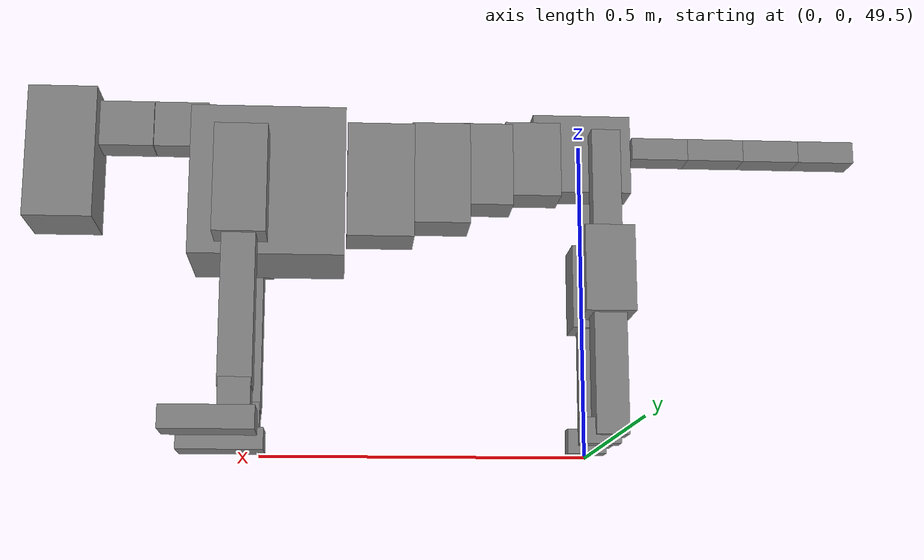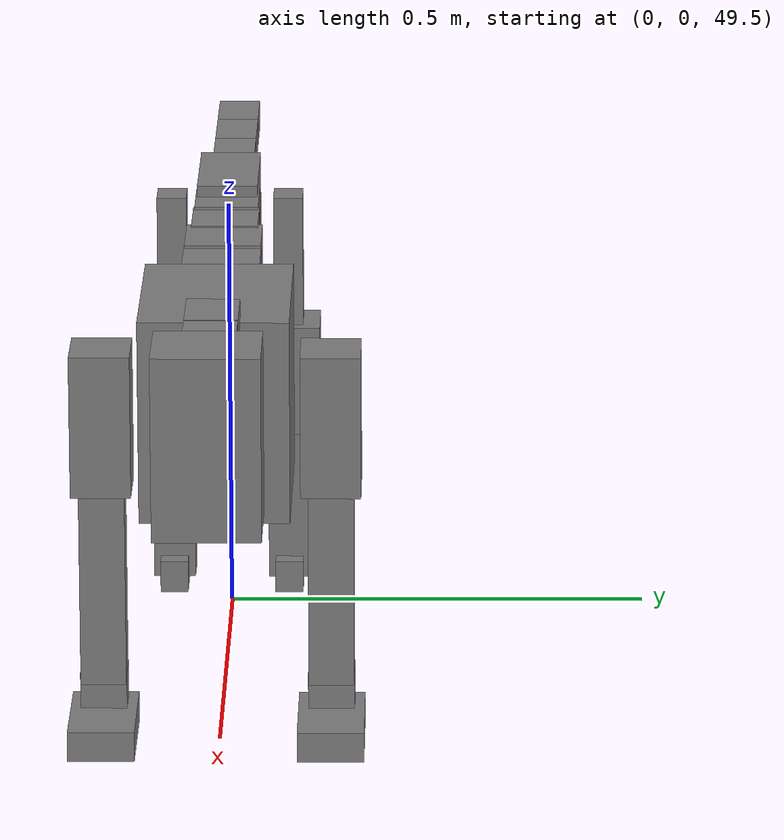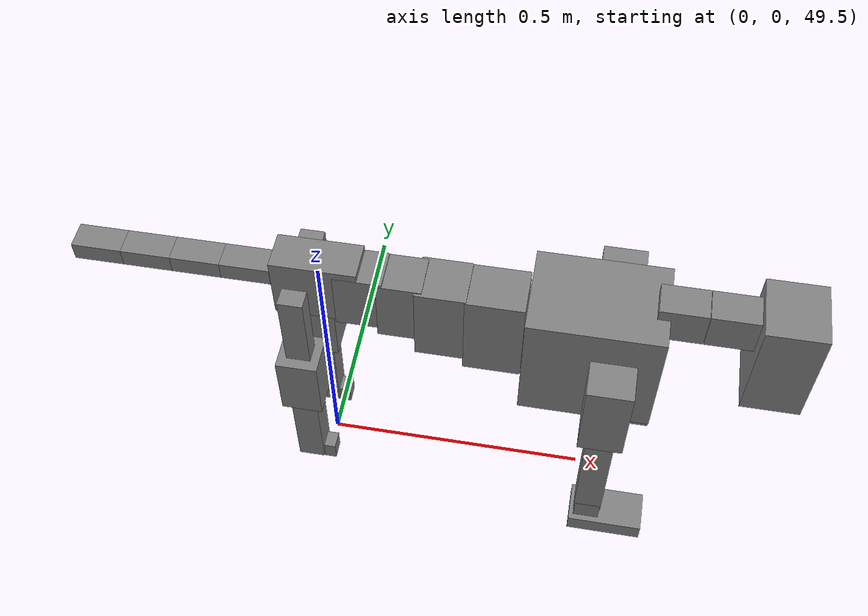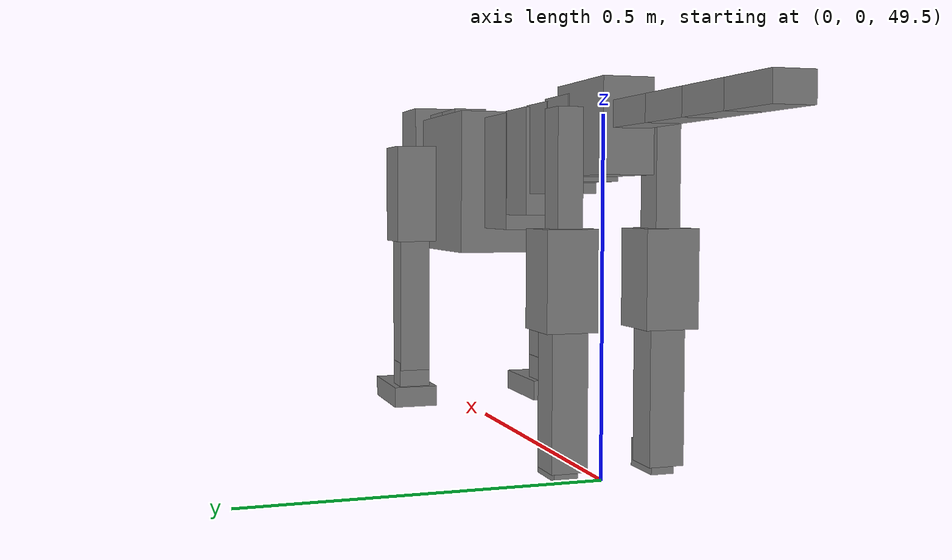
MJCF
<mujoco model="dog">

    <default>
        <joint armature="0.02" stiffness="1" damping="0.2" limited="true"/>
        <geom condim="3" friction="1 0.05 0.05" margin="0.01"/>
        <motor ctrllimited="true" ctrlrange="-1.0 1.0" forcelimited="true" gear="50"/>
    </default>

    <compiler inertiafromgeom="true" angle="radian"/>

    <option timestep="0.016" iterations="50" tolerance="1e-10" solver="Newton" jacobian="dense" cone="pyramidal"/>

    <size nconmax="20000" njmax="60000" nstack="5000000"/>
    <visual>
        <map force="0.1" zfar="30"/>
        <rgba haze="0.15 0.25 0.35 1"/>
        <quality shadowsize="2048"/>
        <global offwidth="800" offheight="800"/>
    </visual>

    <asset>
        <texture type="skybox" builtin="gradient" rgb1="0.3 0.5 0.7" rgb2="0 0 0" width="512" height="512"/>
        <texture name="texplane" type="2d" builtin="checker" rgb1=".2 .3 .4" rgb2=".1 0.15 0.2" width="512" height="512"
                 mark="cross" markrgb=".8 .8 .8"/>
        <texture name="texgeom" type="cube" builtin="flat" mark="cross" width="127" height="1278" rgb1="0.8 0.6 0.4"
                 rgb2="0.8 0.6 0.4" markrgb="1 1 1" random="0.01"/>

        <material name="matplane" reflectance="0.3" texture="texplane" texrepeat="1 1" texuniform="true"/>
        <material name="matgeom" texture="texgeom" texuniform="true" rgba="0.8 0.6 .4 1"/>
    </asset>

    <worldbody>
        <geom name="floor" pos="0 0 0" size="0 0 .25" type="plane" material="matplane" condim="3"/>

        <light directional="false" diffuse=".2 .2 .2" specular="0 0 0" pos="0 0 5" dir="0 0 -1" castshadow="false"/>
        <light mode="targetbodycom" target="torso" directional="false" diffuse=".8 .8 .8" specular="0.3 0.3 0.3"
               pos="0 0 4.0" dir="0 0 -1"/>

        <body name="root" pos="0 0 50">
            <freejoint name="root_1"/>
            <geom type="box" pos="0 0 -0.02" size="0.0774  0.0358  0.063" density="2030"/>

            <body name="spine1" pos="0.054 0 0">
                <joint name="spine1_y" axis="0 1 0" range="0 0.7" limited="true"/>
                <geom type="box" pos="0.02375 0 -0.03" size="0.04375  0.0375  0.05985" density="2030"/>

                <body name="spine2" pos="0.0612 0 0">
                    <joint name="spine2_y" axis="0 1 0" range="-0.15 0.15" limited="true"/>
                    <geom type="box" pos="0.03555  0  -0.04" size="0.04055  0.039  0.06615" density="2030"/>

                    <body name="spine3" pos="0.0730 0 0">
                        <joint name="spine3_y" axis="0 1 0" range="-0.15 0.15" limited="true"/>
                        <geom type="box" pos="0.03555  0  -0.057" size="0.04555  0.0445  0.081" density="2030"/>

                        <body name="spine4" pos="0.0780 0 0">
                            <joint name="spine4_y" axis="0 1 0" range="-0.15 0.15" limited="true"/>
                            <geom type="box" pos="0.05265  0  -0.07" size="0.05265  0.045  0.09135" density="2030"/>

                            <body name="torso" pos="0.1082 0 0">
                                <joint name="torso_y" axis="0 1 0" range="-0.15 0.15" limited="true"/>
                                <geom type="box" pos="0.11925  0  -0.085" size="0.11925  0.085  0.11745"
                                      density="2030"/>

                                <body name="neck1" pos="0.2160  0   0.0180">
                                    <joint name="neck1_y" axis="0 1 0" range="-1.2  -1" limited="true"/>
                                    <geom type="box" pos="0.0423  0  0" size="0.0423  0.03  0.036" density="2325"/>

                                    <body name="neck2" pos="0.0853  0  0">
                                        <joint name="neck2_y" axis="0 1 0" range="0.1  0" limited="true"/>
                                        <geom type="box" pos="0.0423  0  0" size="0.0423  0.03  0.036" density="2325"/>

                                        <body name="head" pos="0.0853  0  0">
                                            <joint name="head_y" axis="0 1 0" range="-0.3  -0.2" limited="true"/>
                                            <geom type="box" pos="0.0531  0  -0.055" size="0.0531  0.06  0.1044"
                                                  density="4030"/>

                                        </body>
                                    </body>
                                </body>

                                <body name="front_shoulder" pos="0.156  0   -0.0480">
                                    <joint name="front_shoulder_y" axis="0 1 0" range="-1 1.5" limited="true"/>
                                    <geom type="box" pos="0 0.13 -0.0562" size="0.0401  0.0343  0.0828" density="1158"/>
                                    <geom type="box" pos="0 -0.13 -0.0562" size="0.0401  0.0343  0.0828"
                                          density="1158"/>

                                    <body name="front_elbow" pos="0  0  -0.1124">
                                        <joint name="front_elbow_y" axis="0 1 0" range="-2 0" limited="true"/>
                                        <geom type="box" pos="0 0.13 -0.1273" size="0.0254  0.0260  0.1273"
                                              density="1081"/>
                                        <geom type="box" pos="0 -0.13 -0.1273" size="0.0254  0.0260  0.1273"
                                              density="1081"/>

                                        <body name="front_wrist" pos="0  0  -0.2546">
                                            <joint name="front_wrist_y" axis="0 1 0" range="-0.2 0" limited="true"/>
                                            <geom type="box" pos="0 0.13 -0.0218" size="0.0239  0.0265  0.0350"
                                                  density="1664"/>
                                            <geom type="box" pos="0 -0.13 -0.0218" size="0.0239  0.0265  0.0350"
                                                  density="1664"/>

                                            <body name="front_finger_end" pos="0  0  -0.0437">
                                                <joint name="front_finger_y" axis="0 1 0" range="-0.4 1"
                                                       limited="true"/>
                                                <geom type="box" pos="0.0379  0.13  -0.0025"
                                                      size="0.0696  0.0379  0.0175" density="1515"/>
                                                <geom type="box" pos="0.0379  -0.13  -0.0025"
                                                      size="0.0696  0.0379  0.0175" density="1515"/>

                                            </body>

                                        </body>
                                    </body>
                                </body>

                            </body>
                        </body>
                    </body>
                </body>
            </body>

            <body name="back_hip" pos="-0.03 0 -0.018">
                <joint name="back_hip_y" axis="0 1 0" range="-1.5 0.3" limited="true"/>
                <geom type="box" pos="0 0.07 -0.0754" size="0.0225  0.0176  0.0982" density="1154"/>
                <geom type="box" pos="0 -0.07 -0.0754" size="0.0225  0.0176  0.0982" density="1154"/>

                <body name="back_knee" pos="0  0  -0.1508">
                    <joint name="back_knee_y" axis="0 1 0" range="0 2.8" limited="true"/>
                    <geom type="box" pos="0 0.07 -0.0514" size="0.0385  0.0379  0.0670" density="1227"/>
                    <geom type="box" pos="0 -0.07 -0.0514" size="0.0385  0.0379  0.0670" density="1227"/>

                    <body name="back_ankle" pos="0  0  -0.1029">
                        <joint name="back_ankle_y" axis="0 1 0" range="-2.2 0" limited="true"/>
                        <geom type="box" pos="0 0.07 -0.0950" size="0.0251  0.0251  0.1062" density="1284"/>
                        <geom type="box" pos="0 -0.07 -0.0950" size="0.0251  0.0251  0.1062" density="1284"/>

                        <body name="back_toe_end" pos="0  0  -0.1900">
                            <joint name="back_toe_y" axis="0 1 0" range="-0.4 1" limited="true"/>
                            <geom type="box" pos="0.0167  0.07  -0.0045" size="0.0306  0.0167  0.0195" density="1515"/>
                            <geom type="box" pos="0.0167  -0.07  -0.0045" size="0.0306  0.0167  0.0195" density="1515"/>

                        </body>
                    </body>
                </body>
            </body>

            <body name="tail1" pos="-0.074 0 -0.006">
                <joint name="tail1_y" axis="0 1 0" range="-0.2 0.2" limited="true"/>
                <geom type="box" pos="-0.0536  0  0" size="0.045  0.025  0.0175" density="1587"/>

                <body name="tail2" pos="-0.09 0 0">
                    <joint name="tail2_y" axis="0 1 0" range="-0.2 0.2" limited="true"/>
                    <geom type="box" pos="-0.0536  0  0" size="0.045  0.025  0.0175" density="1587"/>

                    <body name="tail3" pos="-0.09 0 0">
                        <joint name="tail3_y" axis="0 1 0" range="-0.2 0.2" limited="true"/>
                        <geom type="box" pos="-0.0536  0  0" size="0.045  0.025  0.0175" density="1587"/>

                        <body name="tail4" pos="-0.09 0 0">
                            <joint name="tail4_y" axis="0 1 0" range="-0.2 0.2" limited="true"/>
                            <geom type="box" pos="-0.0536  0  0" size="0.045  0.025  0.0175" density="1587"/>

                        </body>
                    </body>
                </body>
            </body>
        </body>
    </worldbody>

    <actuator>
        <motor joint="spine1_y" forcerange="-150 150     "/>
        <motor joint="spine2_y" forcerange="-150 150     "/>
        <motor joint="spine3_y" forcerange="-150 150     "/>
        <motor joint="spine4_y" forcerange="-150 150     "/>
        <motor joint="torso_y" forcerange="-150 150     "/>
        <motor joint="neck1_y" forcerange="-100 100       "/>
        <motor joint="neck2_y" forcerange="-100 100       "/>
        <motor joint="head_y" forcerange="-150 150       "/>
        <motor joint="front_shoulder_y" forcerange="-170.86 157.79"/>
        <motor joint="front_elbow_y" forcerange="-105.25 183.62"/>
        <motor joint="front_wrist_y" forcerange="-113.78 98.35"/>
        <motor joint="front_finger_y" forcerange="-67.93 94.43"/>
        <motor joint="back_hip_y" forcerange="-226.96 207.92"/>
        <motor joint="back_knee_y" forcerange="-370.08 381.84"/>
        <motor joint="back_angle_y" forcerange="-216.88 85.02"/>
        <motor joint="back_toe_y" forcerange="-24.62 28.96"/>
        <motor joint="tail1_y" forcerange="-50 50     "/>
        <motor joint="tail2_y" forcerange="-50 50     "/>
        <motor joint="tail3_y" forcerange="-50 50     "/>
        <motor joint="tail4_y" forcerange="-50 50     "/>
    </actuator>
</mujoco>
